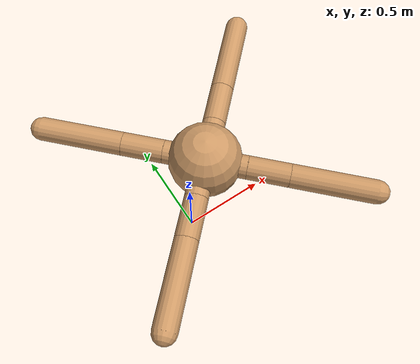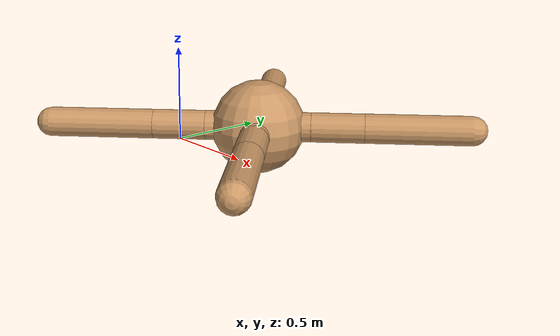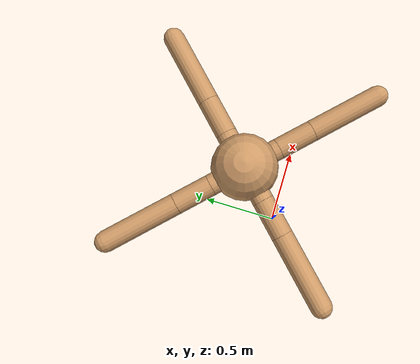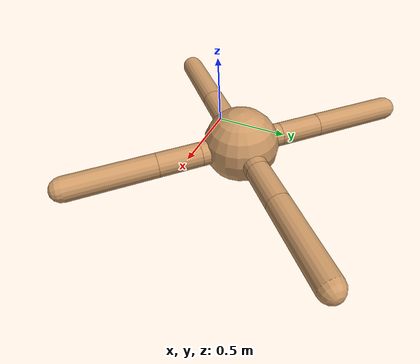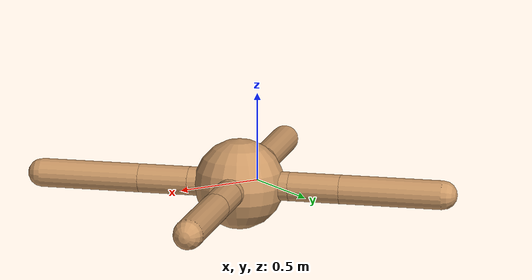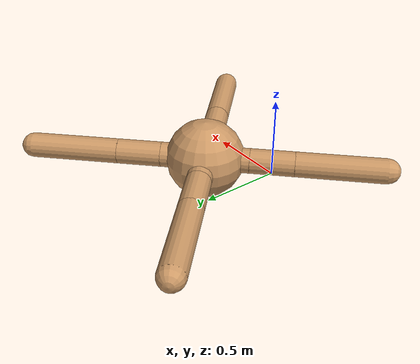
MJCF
<mujoco model="ant">
  <default>
    <joint armature="0.01" damping="1" limited="true"/>
    <geom condim="3" density="5.0" friction="1 0.5 0.5" margin="0.01" rgba="0.8 0.6 0.4 1"/>
  </default>
  <worldbody>
    <body name="torso" pos="0.3 0.3 0.08">
      <geom name="torso_geom" pos="0 0 0" size="0.25" type="sphere"/>
      <joint name="root" pos="0 0 0" type="free"/>
      <body name="front_left_leg" pos="0 0 0">
        <geom fromto="0.0 0.0 0.0 0.2 0.2 0.0" name="aux_1_geom" size="0.08" type="capsule"/>
        <body name="aux_1" pos="0.2 0.2 0">
          <joint axis="0 0 1" name="hip_1" pos="0.0 0.0 0.0" range="-0.52 0.52" type="hinge"/>
          <geom fromto="0.0 0.0 0.0 0.2 0.2 0.0" name="left_leg_geom" size="0.08" type="capsule"/>
          <body pos="0.2 0.2 0">
            <joint axis="-1 1 0" name="ankle_1" pos="0.0 0.0 0.0" range="0.52 1.22" type="hinge"/>
            <geom fromto="0.0 0.0 0.0 0.4 0.4 0.0" name="left_ankle_geom" size="0.08" type="capsule"/>
          </body>
        </body>
      </body>
      <body name="front_right_leg" pos="0 0 0">
        <geom fromto="0.0 0.0 0.0 -0.2 0.2 0.0" name="aux_2_geom" size="0.08" type="capsule"/>
        <body name="aux_2" pos="-0.2 0.2 0">
          <joint axis="0 0 1" name="hip_2" pos="0.0 0.0 0.0" range="-0.52 0.52" type="hinge"/>
          <geom fromto="0.0 0.0 0.0 -0.2 0.2 0.0" name="right_leg_geom" size="0.08" type="capsule"/>
          <body pos="-0.2 0.2 0">
            <joint axis="1 1 0" name="ankle_2" pos="0.0 0.0 0.0" range="-1.22 -0.52" type="hinge"/>
            <geom fromto="0.0 0.0 0.0 -0.4 0.4 0.0" name="right_ankle_geom" size="0.08" type="capsule"/>
          </body>
        </body>
      </body>
      <body name="back_leg" pos="0 0 0">
        <geom fromto="0.0 0.0 0.0 -0.2 -0.2 0.0" name="aux_3_geom" size="0.08" type="capsule"/>
        <body name="aux_3" pos="-0.2 -0.2 0">
          <joint axis="0 0 1" name="hip_3" pos="0.0 0.0 0.0" range="-0.52 0.52" type="hinge"/>
          <geom fromto="0.0 0.0 0.0 -0.2 -0.2 0.0" name="back_leg_geom" size="0.08" type="capsule"/>
          <body pos="-0.2 -0.2 0">
            <joint axis="-1 1 0" name="ankle_3" pos="0.0 0.0 0.0" range="-1.22 -0.52" type="hinge"/>
            <geom fromto="0.0 0.0 0.0 -0.4 -0.4 0.0" name="third_ankle_geom" size="0.08" type="capsule"/>
          </body>
        </body>
      </body>
      <body name="right_back_leg" pos="0 0 0">
        <geom fromto="0.0 0.0 0.0 0.2 -0.2 0.0" name="aux_4_geom" size="0.08" type="capsule"/>
        <body name="aux_4" pos="0.2 -0.2 0">
          <joint axis="0 0 1" name="hip_4" pos="0.0 0.0 0.0" range="-0.52 0.52" type="hinge"/>
          <geom fromto="0.0 0.0 0.0 0.2 -0.2 0.0" name="rightback_leg_geom" size="0.08" type="capsule"/>
          <body pos="0.2 -0.2 0">
            <joint axis="1 1 0" name="ankle_4" pos="0.0 0.0 0.0" range="0.52 1.22" type="hinge"/>
            <geom fromto="0.0 0.0 0.0 0.4 -0.4 0.0" name="fourth_ankle_geom" size="0.08" type="capsule"/>
          </body>
        </body>
      </body>
    </body>
  </worldbody>
  <actuator>
    <motor name="hip_4" joint="hip_4" ctrlrange="-1 1" gear="150"/>
    <motor name="ankle_4" joint="ankle_4" ctrlrange="-1 1" gear="150"/>
    <motor name="hip_1" joint="hip_1" ctrlrange="-1 1" gear="150"/>
    <motor name="ankle_1" joint="ankle_1" ctrlrange="-1 1" gear="150"/>
    <motor name="hip_2" joint="hip_2" ctrlrange="-1 1" gear="150"/>
    <motor name="ankle_2" joint="ankle_2" ctrlrange="-1 1" gear="150"/>
    <motor name="hip_3" joint="hip_3" ctrlrange="-1 1" gear="150"/>
    <motor name="ankle_3" joint="ankle_3" ctrlrange="-1 1" gear="150"/>
  </actuator>
</mujoco>
